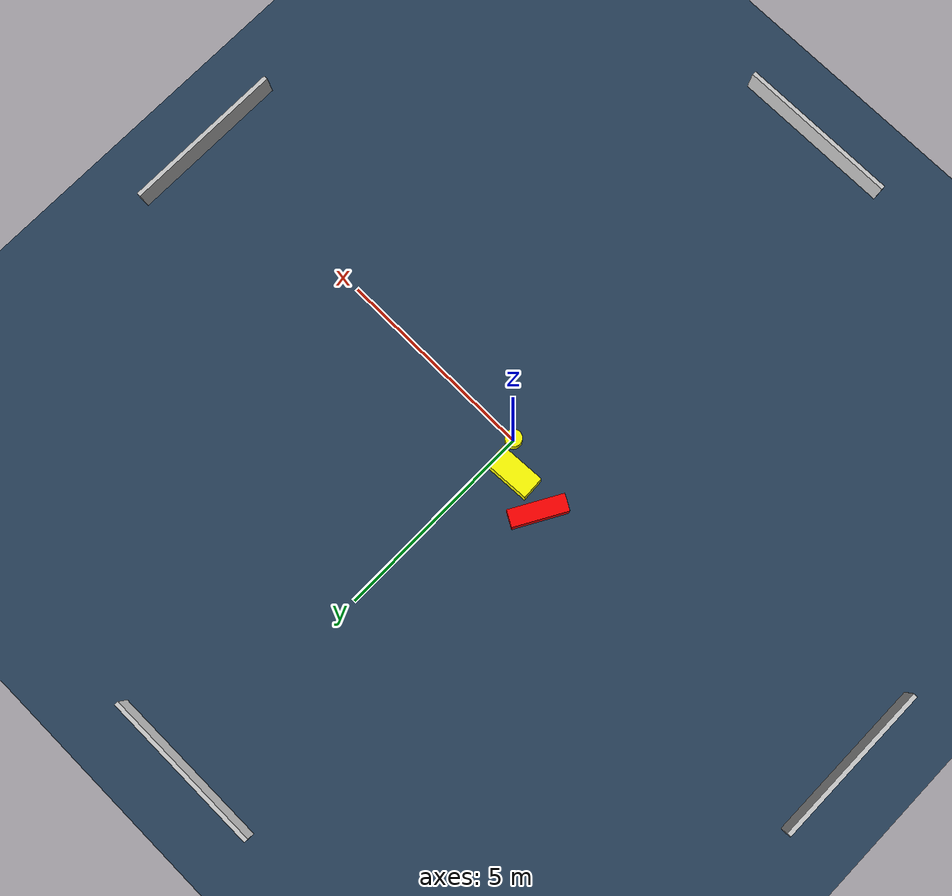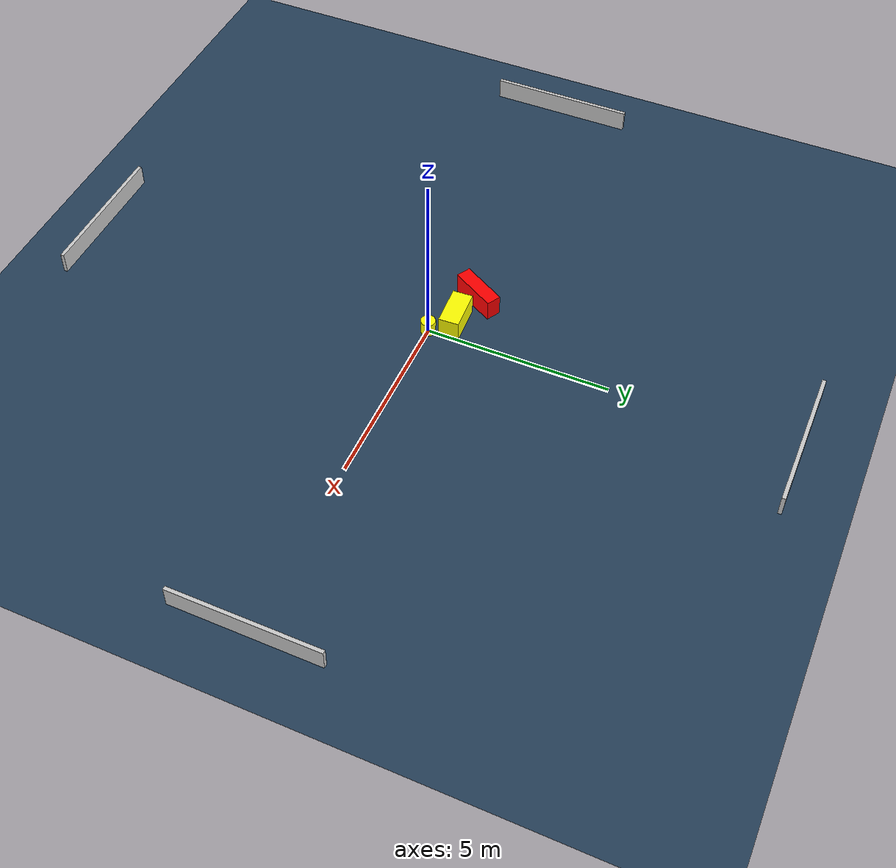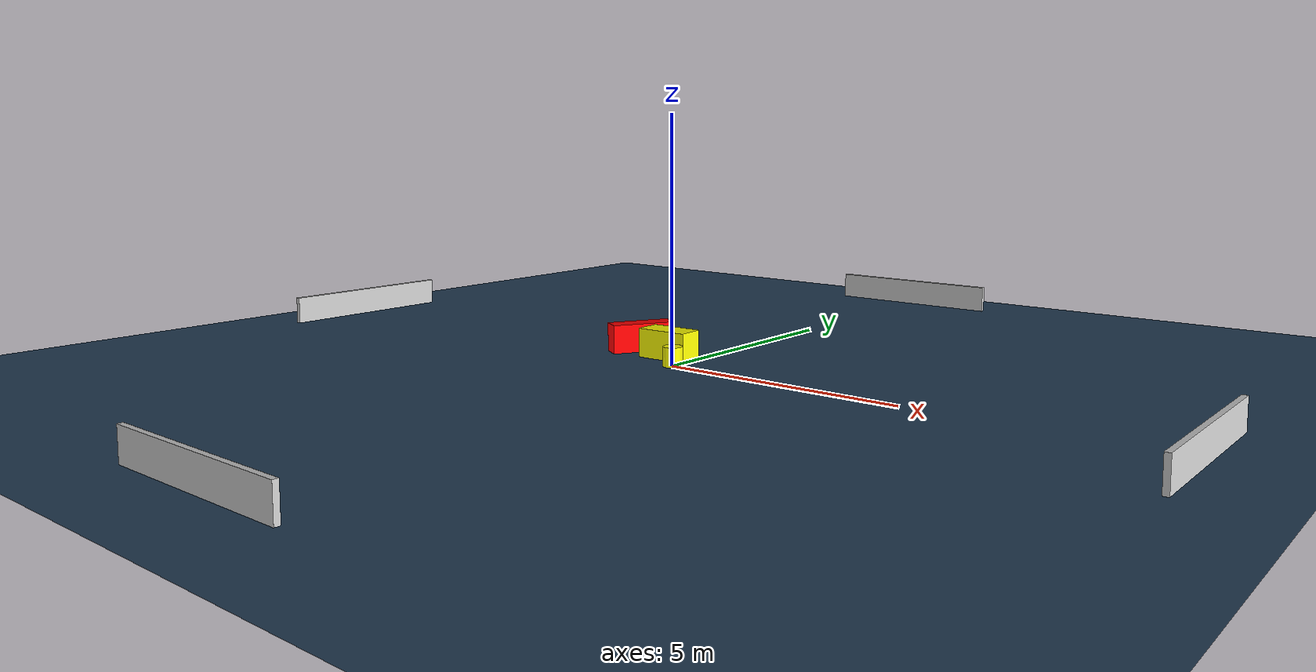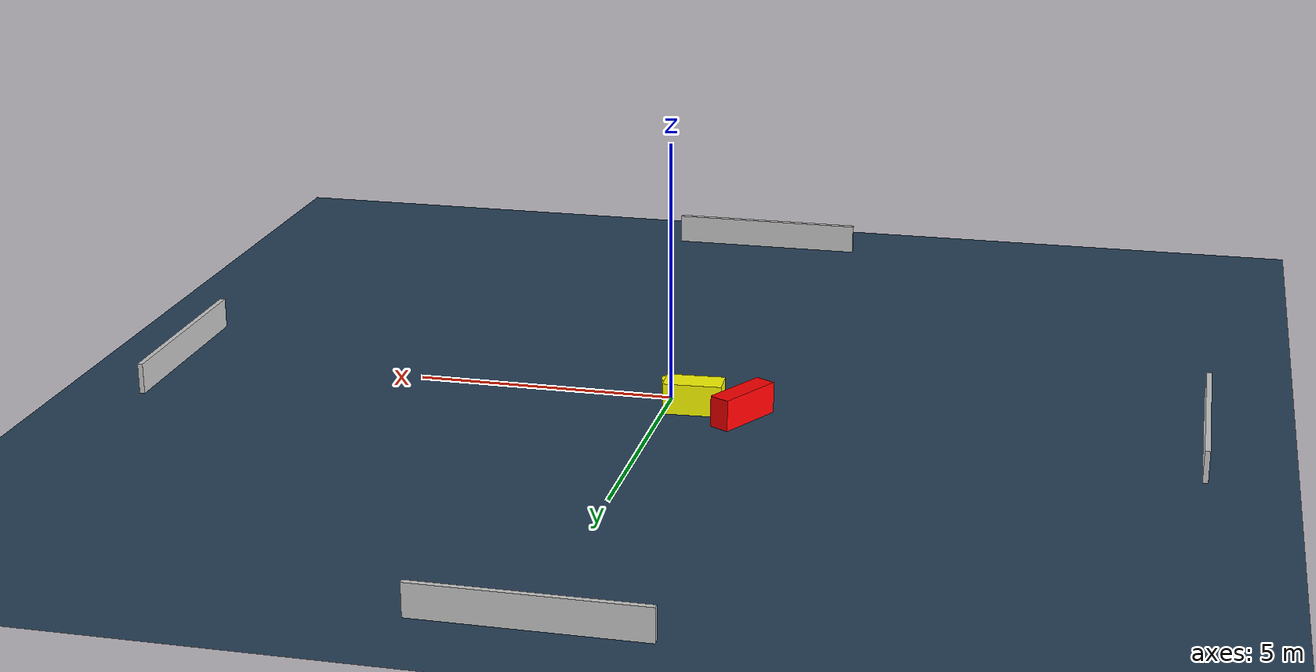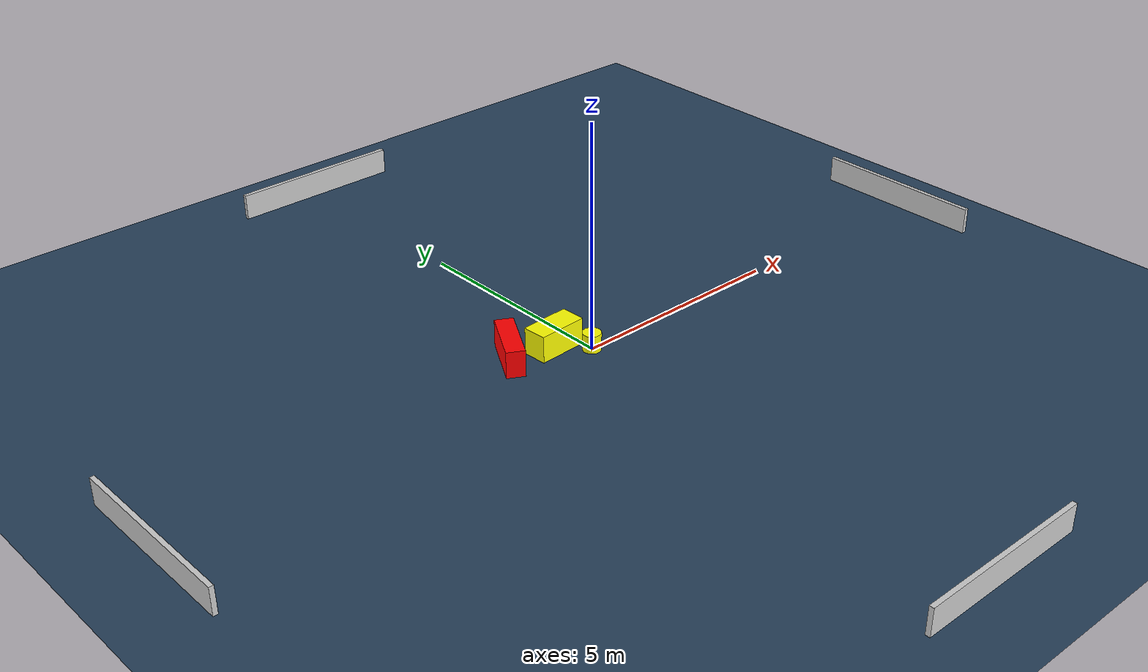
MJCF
<?xml version="1.0" ?>
<mujoco model="generated_environment">
  <option timestep="0.01" integrator="RK4" cone="elliptic"/>
  <default>
    <geom density="1"/>
  </default>
  <asset>
    <texture builtin="gradient" height="3072" name="skybox" rgb1="0.3 0.5 0.7" rgb2="0 0 0" type="skybox" width="512"/>
    <texture builtin="checker" height="300" name="groundplane" rgb1="0.2 0.3 0.4" rgb2="0.1 0.2 0.3" type="2d" width="300"/>
    <material name="groundplane" reflectance="0.2" texrepeat="5 5" texture="groundplane"/>
  </asset>
  <worldbody>
    <light dir="0 0 -1" directional="true" pos="0 0 1.5"/>
    <geom condim="3" friction="0.5 0.005 0.001" material="groundplane" name="floor" pos="0 0 0" size="0 0 0.05" type="plane"/>
    <body name="walls">
      <geom name="wall_1" condim="4" pos="-10.0 0.0 0.3" rgba="0.800000011920929 0.800000011920929 0.800000011920929 1.0" size="0.05 2.0 0.3" type="box"/>
      <geom name="wall_2" condim="4" pos="10.0 0.0 0.3" rgba="0.800000011920929 0.800000011920929 0.800000011920929 1.0" size="0.05 2.0 0.3" type="box"/>
      <geom name="wall_3" condim="4" pos="0.0 -10.0 0.3" rgba="0.800000011920929 0.800000011920929 0.800000011920929 1.0" size="2.0 0.05 0.3" type="box"/>
      <geom name="wall_4" condim="4" pos="0.0 10.0 0.3" rgba="0.800000011920929 0.800000011920929 0.800000011920929 1.0" size="2.0 0.05 0.3" type="box"/>
    </body>
    <body name="robot">
      <joint name="joint_x" type="slide" pos="0 0 0" axis="1 0 0"/>
      <joint name="joint_y" type="slide" pos="0 0 0" axis="0 1 0"/>
      <geom name="robot" type="cylinder" pos="0.0 0.0 0.2" size="0.2 0.2 0.0" mass="5.0" friction="1.0 0.005 0.0001" condim="4" rgba="1.0 1.0 0.0 1.0"/>
    </body>
    <body name="obstacle_1_movable">
      <geom name="obstacle_1_movable" condim="4" pos="-0.5523332698721763 0.5478053125185038 0.3" euler="0 0 92.93167470984146" friction="0.0 0.005 0.001" rgba="1.0 1.0 0.0 1.0" size="0.27472201622238596 0.5546371642272995 0.3" type="box" mass="0.1"/>
      <joint type="free"/>
    </body>
    <body name="obstacle_2_static">
      <geom name="obstacle_2_static" condim="4" pos="-1.5248939601359104 0.7889381004931375 0.3" euler="0 0 150.44378308618843" friction="0.0 0.005 0.001" rgba="1.0 0.0 0.0 1.0" size="0.20259844955536918 0.6646600468104983 0.3" type="box"/>
    </body>
  </worldbody>
  <actuator>
    <motor name="actuator_x" joint="joint_x" gear="1" ctrlrange="-1 1"/>
    <motor name="actuator_y" joint="joint_y" gear="1" ctrlrange="-1 1"/>
  </actuator>
</mujoco>
